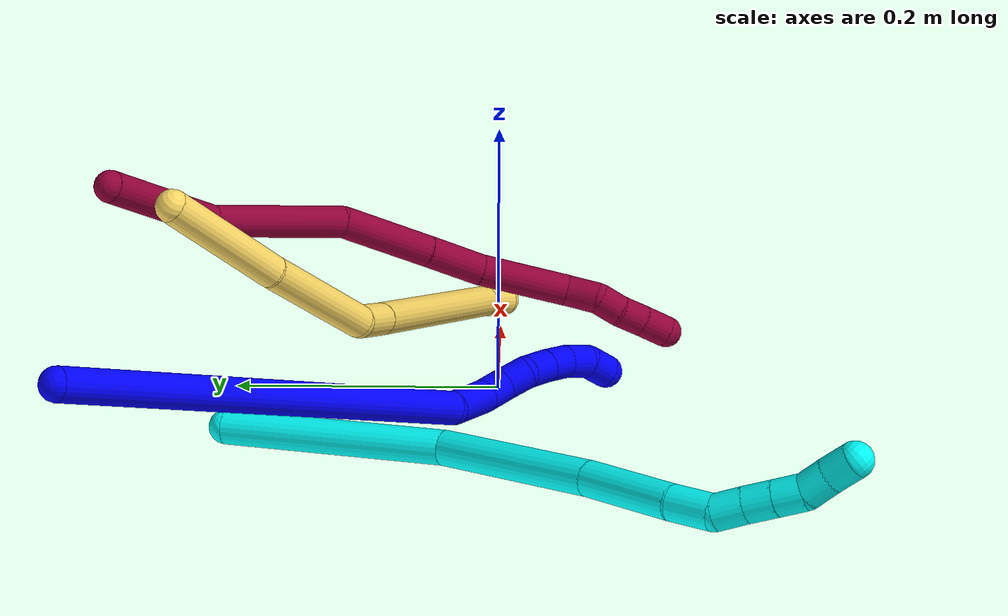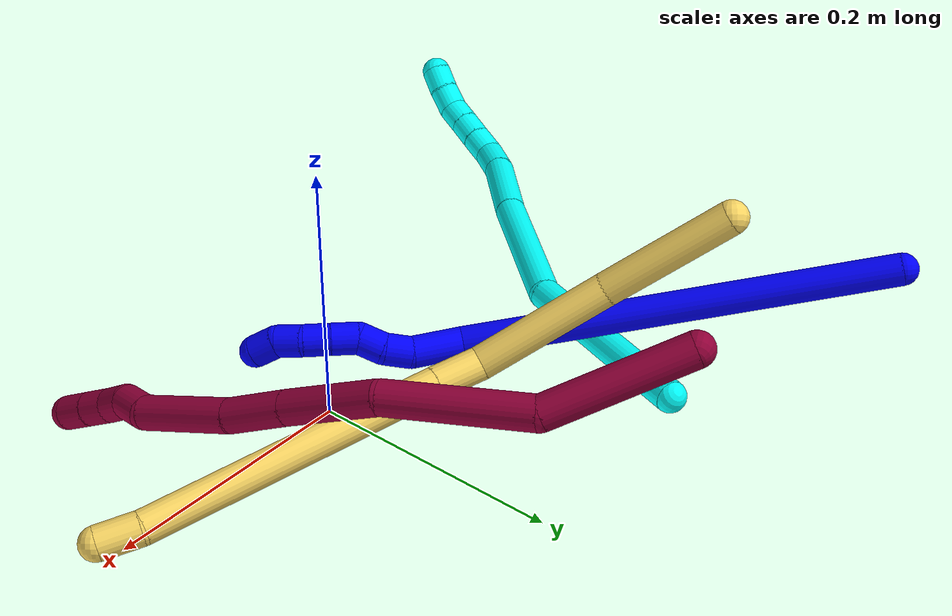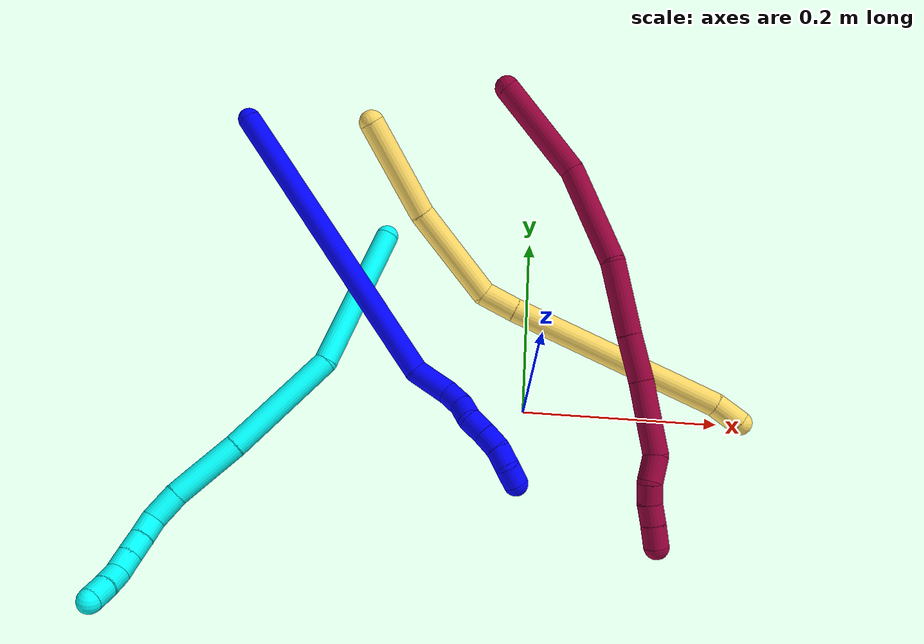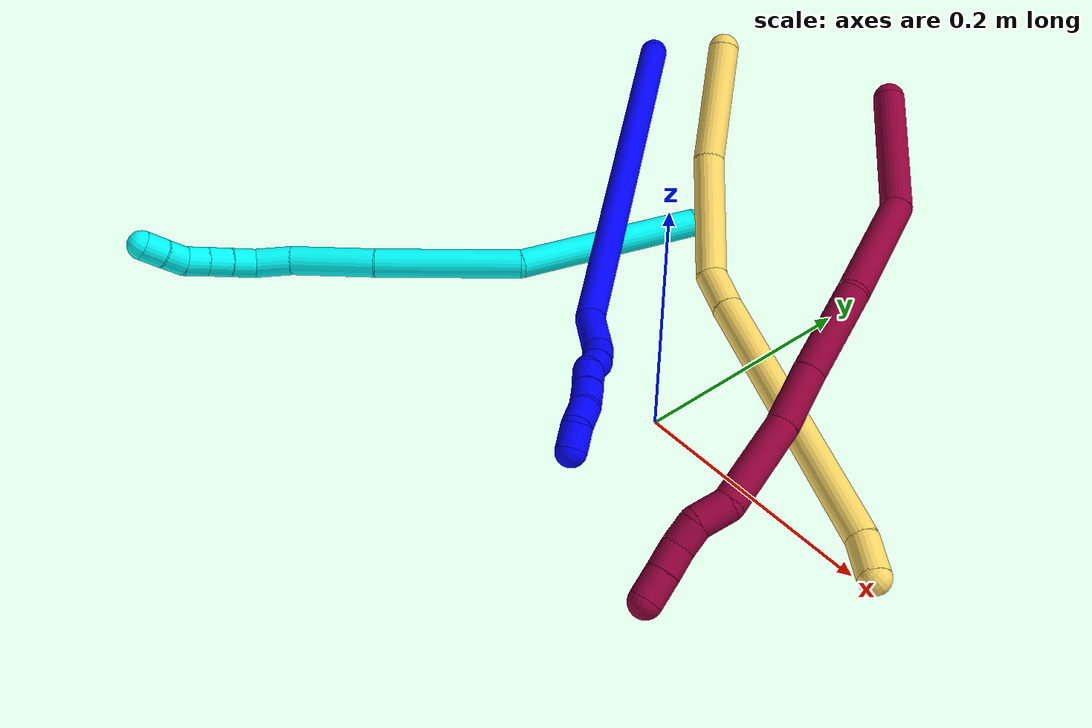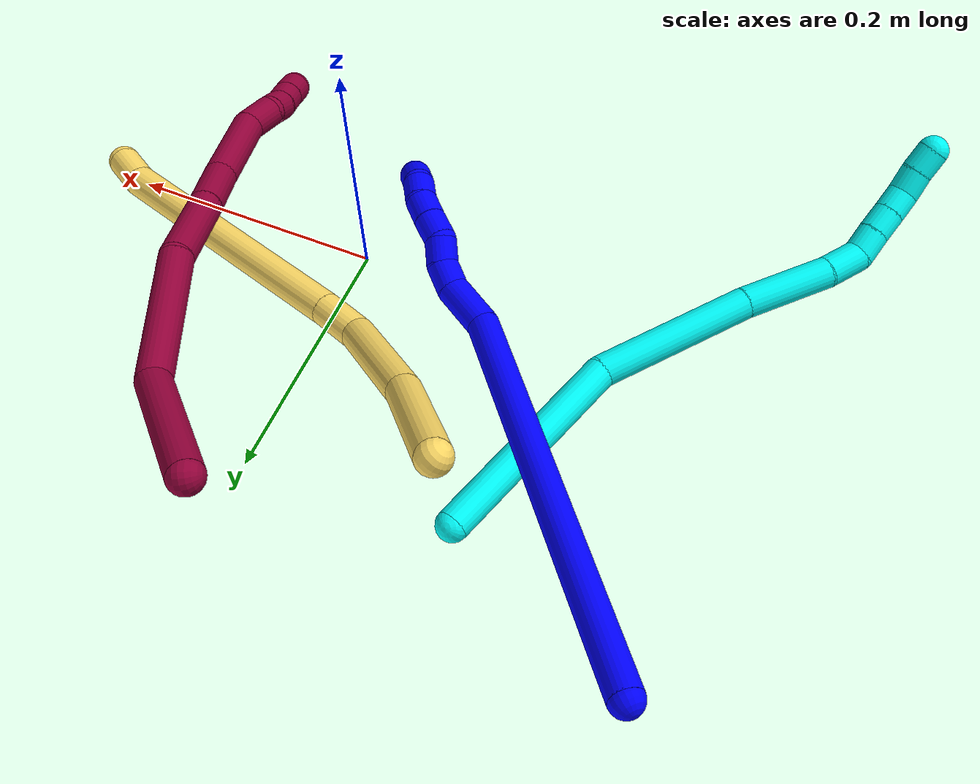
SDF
<sdf version="1.7">
 <world name="default">
  <model name="1">
   <static>0</static>
   <link name="1">
    <collision name="collision-cylinder-e_1_1_4">
     <pose>0.029832 -0.030413 -0.162078 2.9561 0.178968 1.53481</pose>
     <geometry><cylinder><radius>0.0125</radius><length>0.335167</length></cylinder></geometry>
     <surface>
      <friction><ode><mu>1.16</mu><mu2>1.16</mu2><slip1>0</slip1><slip2>0</slip2></ode></friction>
      <contact><ode><kp>1e+06</kp><kd>1</kd><max_vel>0</max_vel><min_depth>0.001</min_depth></ode></contact>
     </surface>
    </collision>
    <visual name="visual-cylinder-e_1_1_4">
     <pose>0.029832 -0.030413 -0.162078 2.9561 0.178968 1.53481</pose>
     <geometry><cylinder><radius>0.0125</radius><length>0.335167</length></cylinder></geometry>
     <material><ambient>0 0 1 1</ambient></material>
    </visual>
    <collision name="collision-cylinder-e_2_4_5">
     <pose>0.055717 -0.061799 -0.344134 3.09296 -0.194852 -2.6538</pose>
     <geometry><cylinder><radius>0.0125</radius><length>0.040775</length></cylinder></geometry>
     <surface>
      <friction><ode><mu>1.16</mu><mu2>1.16</mu2><slip1>0</slip1><slip2>0</slip2></ode></friction>
      <contact><ode><kp>1e+06</kp><kd>1</kd><max_vel>0</max_vel><min_depth>0.001</min_depth></ode></contact>
     </surface>
    </collision>
    <visual name="visual-cylinder-e_2_4_5">
     <pose>0.055717 -0.061799 -0.344134 3.09296 -0.194852 -2.6538</pose>
     <geometry><cylinder><radius>0.0125</radius><length>0.040775</length></cylinder></geometry>
     <material><ambient>0 0 1 1</ambient></material>
    </visual>
    <collision name="collision-cylinder-e_3_5_6">
     <pose>0.051412 -0.060309 -0.374522 -2.90933 -0.033408 0.284474</pose>
     <geometry><cylinder><radius>0.0125</radius><length>0.021406</length></cylinder></geometry>
     <surface>
      <friction><ode><mu>1.16</mu><mu2>1.16</mu2><slip1>0</slip1><slip2>0</slip2></ode></friction>
      <contact><ode><kp>1e+06</kp><kd>1</kd><max_vel>0</max_vel><min_depth>0.001</min_depth></ode></contact>
     </surface>
    </collision>
    <visual name="visual-cylinder-e_3_5_6">
     <pose>0.051412 -0.060309 -0.374522 -2.90933 -0.033408 0.284474</pose>
     <geometry><cylinder><radius>0.0125</radius><length>0.021406</length></cylinder></geometry>
     <material><ambient>0 0 1 1</ambient></material>
    </visual>
    <collision name="collision-cylinder-e_4_6_7">
     <pose>0.053349 -0.05372 -0.394014 -2.71507 0.226036 -0.965518</pose>
     <geometry><cylinder><radius>0.0125</radius><length>0.020472</length></cylinder></geometry>
     <surface>
      <friction><ode><mu>1.16</mu><mu2>1.16</mu2><slip1>0</slip1><slip2>0</slip2></ode></friction>
      <contact><ode><kp>1e+06</kp><kd>1</kd><max_vel>0</max_vel><min_depth>0.001</min_depth></ode></contact>
     </surface>
    </collision>
    <visual name="visual-cylinder-e_4_6_7">
     <pose>0.053349 -0.05372 -0.394014 -2.71507 0.226036 -0.965518</pose>
     <geometry><cylinder><radius>0.0125</radius><length>0.020472</length></cylinder></geometry>
     <material><ambient>0 0 1 1</ambient></material>
    </visual>
    <collision name="collision-cylinder-e_5_7_8">
     <pose>0.055448 -0.049232 -0.413849 -3.10802 -0.018126 0.990129</pose>
     <geometry><cylinder><radius>0.0125</radius><length>0.021522</length></cylinder></geometry>
     <surface>
      <friction><ode><mu>1.16</mu><mu2>1.16</mu2><slip1>0</slip1><slip2>0</slip2></ode></friction>
      <contact><ode><kp>1e+06</kp><kd>1</kd><max_vel>0</max_vel><min_depth>0.001</min_depth></ode></contact>
     </surface>
    </collision>
    <visual name="visual-cylinder-e_5_7_8">
     <pose>0.055448 -0.049232 -0.413849 -3.10802 -0.018126 0.990129</pose>
     <geometry><cylinder><radius>0.0125</radius><length>0.021522</length></cylinder></geometry>
     <material><ambient>0 0 1 1</ambient></material>
    </visual>
    <collision name="collision-cylinder-e_6_8_9">
     <pose>0.055749 -0.048898 -0.434904 3.13895 0.048167 3.03186</pose>
     <geometry><cylinder><radius>0.0125</radius><length>0.020628</length></cylinder></geometry>
     <surface>
      <friction><ode><mu>1.16</mu><mu2>1.16</mu2><slip1>0</slip1><slip2>0</slip2></ode></friction>
      <contact><ode><kp>1e+06</kp><kd>1</kd><max_vel>0</max_vel><min_depth>0.001</min_depth></ode></contact>
     </surface>
    </collision>
    <visual name="visual-cylinder-e_6_8_9">
     <pose>0.055749 -0.048898 -0.434904 3.13895 0.048167 3.03186</pose>
     <geometry><cylinder><radius>0.0125</radius><length>0.020628</length></cylinder></geometry>
     <material><ambient>0 0 1 1</ambient></material>
    </visual>
    <collision name="collision-cylinder-e_7_9_10">
     <pose>0.059128 -0.049632 -0.454768 3.0678 0.292002 2.64972</pose>
     <geometry><cylinder><radius>0.0125</radius><length>0.020025</length></cylinder></geometry>
     <surface>
      <friction><ode><mu>1.16</mu><mu2>1.16</mu2><slip1>0</slip1><slip2>0</slip2></ode></friction>
      <contact><ode><kp>1e+06</kp><kd>1</kd><max_vel>0</max_vel><min_depth>0.001</min_depth></ode></contact>
     </surface>
    </collision>
    <visual name="visual-cylinder-e_7_9_10">
     <pose>0.059128 -0.049632 -0.454768 3.0678 0.292002 2.64972</pose>
     <geometry><cylinder><radius>0.0125</radius><length>0.020025</length></cylinder></geometry>
     <material><ambient>0 0 1 1</ambient></material>
    </visual>
    <collision name="collision-cylinder-e_8_10_2">
     <pose>0.064704 -0.055042 -0.472738 2.63161 0.272629 0.968792</pose>
     <geometry><cylinder><radius>0.0125</radius><length>0.020006</length></cylinder></geometry>
     <surface>
      <friction><ode><mu>1.16</mu><mu2>1.16</mu2><slip1>0</slip1><slip2>0</slip2></ode></friction>
      <contact><ode><kp>1e+06</kp><kd>1</kd><max_vel>0</max_vel><min_depth>0.001</min_depth></ode></contact>
     </surface>
    </collision>
    <visual name="visual-cylinder-e_8_10_2">
     <pose>0.064704 -0.055042 -0.472738 2.63161 0.272629 0.968792</pose>
     <geometry><cylinder><radius>0.0125</radius><length>0.020006</length></cylinder></geometry>
     <material><ambient>0 0 1 1</ambient></material>
    </visual>
    <collision name="collision-sphere-2">
     <pose>0.067397 -0.059745 -0.481146 0 -0 0</pose>
     <geometry><sphere><radius>0.0125</radius></sphere></geometry>
     <surface>
      <friction><ode><mu>1.16</mu><mu2>1.16</mu2><slip1>0</slip1><slip2>0</slip2></ode></friction>
      <contact><ode><kp>1e+06</kp><kd>1</kd><max_vel>0</max_vel><min_depth>0.001</min_depth></ode></contact>
     </surface>
    </collision>
    <visual name="visual-sphere-2">
     <pose>0.067397 -0.059745 -0.481146 0 -0 0</pose>
     <geometry><sphere><radius>0.0125</radius></sphere></geometry>
     <material><ambient>0 0 1 1</ambient></material>
    </visual>
    <collision name="collision-sphere-10">
     <pose>0.06201 -0.050339 -0.46433 0 -0 0</pose>
     <geometry><sphere><radius>0.0125</radius></sphere></geometry>
     <surface>
      <friction><ode><mu>1.16</mu><mu2>1.16</mu2><slip1>0</slip1><slip2>0</slip2></ode></friction>
      <contact><ode><kp>1e+06</kp><kd>1</kd><max_vel>0</max_vel><min_depth>0.001</min_depth></ode></contact>
     </surface>
    </collision>
    <visual name="visual-sphere-10">
     <pose>0.06201 -0.050339 -0.46433 0 -0 0</pose>
     <geometry><sphere><radius>0.0125</radius></sphere></geometry>
     <material><ambient>0 0 1 1</ambient></material>
    </visual>
    <collision name="collision-sphere-9">
     <pose>0.056246 -0.048926 -0.445206 0 -0 0</pose>
     <geometry><sphere><radius>0.0125</radius></sphere></geometry>
     <surface>
      <friction><ode><mu>1.16</mu><mu2>1.16</mu2><slip1>0</slip1><slip2>0</slip2></ode></friction>
      <contact><ode><kp>1e+06</kp><kd>1</kd><max_vel>0</max_vel><min_depth>0.001</min_depth></ode></contact>
     </surface>
    </collision>
    <visual name="visual-sphere-9">
     <pose>0.056246 -0.048926 -0.445206 0 -0 0</pose>
     <geometry><sphere><radius>0.0125</radius></sphere></geometry>
     <material><ambient>0 0 1 1</ambient></material>
    </visual>
    <collision name="collision-sphere-4">
     <pose>0.059664 -0.060827 -0.324156 0 -0 0</pose>
     <geometry><sphere><radius>0.0125</radius></sphere></geometry>
     <surface>
      <friction><ode><mu>1.16</mu><mu2>1.16</mu2><slip1>0</slip1><slip2>0</slip2></ode></friction>
      <contact><ode><kp>1e+06</kp><kd>1</kd><max_vel>0</max_vel><min_depth>0.001</min_depth></ode></contact>
     </surface>
    </collision>
    <visual name="visual-sphere-4">
     <pose>0.059664 -0.060827 -0.324156 0 -0 0</pose>
     <geometry><sphere><radius>0.0125</radius></sphere></geometry>
     <material><ambient>0 0 1 1</ambient></material>
    </visual>
    <collision name="collision-sphere-1">
     <geometry><sphere><radius>0.0125</radius></sphere></geometry>
     <surface>
      <friction><ode><mu>1.16</mu><mu2>1.16</mu2><slip1>0</slip1><slip2>0</slip2></ode></friction>
      <contact><ode><kp>1e+06</kp><kd>1</kd><max_vel>0</max_vel><min_depth>0.001</min_depth></ode></contact>
     </surface>
    </collision>
    <visual name="visual-sphere-1">
     <geometry><sphere><radius>0.0125</radius></sphere></geometry>
     <material><ambient>0 0 1 1</ambient></material>
    </visual>
    <collision name="collision-sphere-8">
     <pose>0.055253 -0.048871 -0.424602 0 -0 0</pose>
     <geometry><sphere><radius>0.0125</radius></sphere></geometry>
     <surface>
      <friction><ode><mu>1.16</mu><mu2>1.16</mu2><slip1>0</slip1><slip2>0</slip2></ode></friction>
      <contact><ode><kp>1e+06</kp><kd>1</kd><max_vel>0</max_vel><min_depth>0.001</min_depth></ode></contact>
     </surface>
    </collision>
    <visual name="visual-sphere-8">
     <pose>0.055253 -0.048871 -0.424602 0 -0 0</pose>
     <geometry><sphere><radius>0.0125</radius></sphere></geometry>
     <material><ambient>0 0 1 1</ambient></material>
    </visual>
    <collision name="collision-sphere-5">
     <pose>0.05177 -0.062772 -0.364112 0 -0 0</pose>
     <geometry><sphere><radius>0.0125</radius></sphere></geometry>
     <surface>
      <friction><ode><mu>1.16</mu><mu2>1.16</mu2><slip1>0</slip1><slip2>0</slip2></ode></friction>
      <contact><ode><kp>1e+06</kp><kd>1</kd><max_vel>0</max_vel><min_depth>0.001</min_depth></ode></contact>
     </surface>
    </collision>
    <visual name="visual-sphere-5">
     <pose>0.05177 -0.062772 -0.364112 0 -0 0</pose>
     <geometry><sphere><radius>0.0125</radius></sphere></geometry>
     <material><ambient>0 0 1 1</ambient></material>
    </visual>
    <collision name="collision-sphere-6">
     <pose>0.051055 -0.057847 -0.384932 0 -0 0</pose>
     <geometry><sphere><radius>0.0125</radius></sphere></geometry>
     <surface>
      <friction><ode><mu>1.16</mu><mu2>1.16</mu2><slip1>0</slip1><slip2>0</slip2></ode></friction>
      <contact><ode><kp>1e+06</kp><kd>1</kd><max_vel>0</max_vel><min_depth>0.001</min_depth></ode></contact>
     </surface>
    </collision>
    <visual name="visual-sphere-6">
     <pose>0.051055 -0.057847 -0.384932 0 -0 0</pose>
     <geometry><sphere><radius>0.0125</radius></sphere></geometry>
     <material><ambient>0 0 1 1</ambient></material>
    </visual>
    <collision name="collision-sphere-7">
     <pose>0.055643 -0.049593 -0.403096 0 -0 0</pose>
     <geometry><sphere><radius>0.0125</radius></sphere></geometry>
     <surface>
      <friction><ode><mu>1.16</mu><mu2>1.16</mu2><slip1>0</slip1><slip2>0</slip2></ode></friction>
      <contact><ode><kp>1e+06</kp><kd>1</kd><max_vel>0</max_vel><min_depth>0.001</min_depth></ode></contact>
     </surface>
    </collision>
    <visual name="visual-sphere-7">
     <pose>0.055643 -0.049593 -0.403096 0 -0 0</pose>
     <geometry><sphere><radius>0.0125</radius></sphere></geometry>
     <material><ambient>0 0 1 1</ambient></material>
    </visual>
    <inertial>
     <pose>0.03857 -0.038535 -0.241761 0 -0 0</pose>
     <mass>0.5</mass>
     <inertia>
      <ixx>0.00321</ixx>
      <ixy>0</ixy>
      <ixz>0</ixz>
      <iyy>0.003091</iyy>
      <iyz>0</iyz>
      <izz>-2.6e-05</izz>
     </inertia>
    </inertial>
   </link>
   <pose>-0.318637 0.288308 0.084571 1.57556 0.198561 -2.32644</pose>
  </model>
  <model name="3">
   <static>0</static>
   <link name="3">
    <collision name="collision-cylinder-e_1_1_4">
     <pose>-0.011115 -0.061746 0.05356 0.856269 -0.135151 -0.061753</pose>
     <geometry><cylinder><radius>0.0125</radius><length>0.164983</length></cylinder></geometry>
     <surface>
      <friction><ode><mu>1.16</mu><mu2>1.16</mu2><slip1>0</slip1><slip2>0</slip2></ode></friction>
      <contact><ode><kp>1e+06</kp><kd>1</kd><max_vel>0</max_vel><min_depth>0.001</min_depth></ode></contact>
     </surface>
    </collision>
    <visual name="visual-cylinder-e_1_1_4">
     <pose>-0.011115 -0.061746 0.05356 0.856269 -0.135151 -0.061753</pose>
     <geometry><cylinder><radius>0.0125</radius><length>0.164983</length></cylinder></geometry>
     <material><ambient>0.003922 1 0.996078 1</ambient></material>
    </visual>
    <collision name="collision-cylinder-e_2_4_5">
     <pose>-0.008522 -0.174282 0.142656 0.960313 0.217631 0.113671</pose>
     <geometry><cylinder><radius>0.0125</radius><length>0.126969</length></cylinder></geometry>
     <surface>
      <friction><ode><mu>1.16</mu><mu2>1.16</mu2><slip1>0</slip1><slip2>0</slip2></ode></friction>
      <contact><ode><kp>1e+06</kp><kd>1</kd><max_vel>0</max_vel><min_depth>0.001</min_depth></ode></contact>
     </surface>
    </collision>
    <visual name="visual-cylinder-e_2_4_5">
     <pose>-0.008522 -0.174282 0.142656 0.960313 0.217631 0.113671</pose>
     <geometry><cylinder><radius>0.0125</radius><length>0.126969</length></cylinder></geometry>
     <material><ambient>0.003922 1 0.996078 1</ambient></material>
    </visual>
    <collision name="collision-cylinder-e_3_5_6">
     <pose>0.015998 -0.253556 0.198628 0.948416 0.299187 0.154412</pose>
     <geometry><cylinder><radius>0.0125</radius><length>0.073374</length></cylinder></geometry>
     <surface>
      <friction><ode><mu>1.16</mu><mu2>1.16</mu2><slip1>0</slip1><slip2>0</slip2></ode></friction>
      <contact><ode><kp>1e+06</kp><kd>1</kd><max_vel>0</max_vel><min_depth>0.001</min_depth></ode></contact>
     </surface>
    </collision>
    <visual name="visual-cylinder-e_3_5_6">
     <pose>0.015998 -0.253556 0.198628 0.948416 0.299187 0.154412</pose>
     <geometry><cylinder><radius>0.0125</radius><length>0.073374</length></cylinder></geometry>
     <material><ambient>0.003922 1 0.996078 1</ambient></material>
    </visual>
    <collision name="collision-cylinder-e_4_6_7">
     <pose>0.0294 -0.294335 0.228983 0.892002 0.162393 0.077777</pose>
     <geometry><cylinder><radius>0.0125</radius><length>0.032015</length></cylinder></geometry>
     <surface>
      <friction><ode><mu>1.16</mu><mu2>1.16</mu2><slip1>0</slip1><slip2>0</slip2></ode></friction>
      <contact><ode><kp>1e+06</kp><kd>1</kd><max_vel>0</max_vel><min_depth>0.001</min_depth></ode></contact>
     </surface>
    </collision>
    <visual name="visual-cylinder-e_4_6_7">
     <pose>0.0294 -0.294335 0.228983 0.892002 0.162393 0.077777</pose>
     <geometry><cylinder><radius>0.0125</radius><length>0.032015</length></cylinder></geometry>
     <material><ambient>0.003922 1 0.996078 1</ambient></material>
    </visual>
    <collision name="collision-cylinder-e_5_7_8">
     <pose>0.029381 -0.316552 0.242914 1.18649 -0.238963 -0.161543</pose>
     <geometry><cylinder><radius>0.0125</radius><length>0.02203</length></cylinder></geometry>
     <surface>
      <friction><ode><mu>1.16</mu><mu2>1.16</mu2><slip1>0</slip1><slip2>0</slip2></ode></friction>
      <contact><ode><kp>1e+06</kp><kd>1</kd><max_vel>0</max_vel><min_depth>0.001</min_depth></ode></contact>
     </surface>
    </collision>
    <visual name="visual-cylinder-e_5_7_8">
     <pose>0.029381 -0.316552 0.242914 1.18649 -0.238963 -0.161543</pose>
     <geometry><cylinder><radius>0.0125</radius><length>0.02203</length></cylinder></geometry>
     <material><ambient>0.003922 1 0.996078 1</ambient></material>
    </visual>
    <collision name="collision-cylinder-e_6_8_9">
     <pose>0.02472 -0.33573 0.250851 1.16976 -0.20149 -0.133674</pose>
     <geometry><cylinder><radius>0.0125</radius><length>0.020524</length></cylinder></geometry>
     <surface>
      <friction><ode><mu>1.16</mu><mu2>1.16</mu2><slip1>0</slip1><slip2>0</slip2></ode></friction>
      <contact><ode><kp>1e+06</kp><kd>1</kd><max_vel>0</max_vel><min_depth>0.001</min_depth></ode></contact>
     </surface>
    </collision>
    <visual name="visual-cylinder-e_6_8_9">
     <pose>0.02472 -0.33573 0.250851 1.16976 -0.20149 -0.133674</pose>
     <geometry><cylinder><radius>0.0125</radius><length>0.020524</length></cylinder></geometry>
     <material><ambient>0.003922 1 0.996078 1</ambient></material>
    </visual>
    <collision name="collision-cylinder-e_7_9_10">
     <pose>0.02049 -0.35399 0.258667 1.1629 -0.218314 -0.143809</pose>
     <geometry><cylinder><radius>0.0125</radius><length>0.020092</length></cylinder></geometry>
     <surface>
      <friction><ode><mu>1.16</mu><mu2>1.16</mu2><slip1>0</slip1><slip2>0</slip2></ode></friction>
      <contact><ode><kp>1e+06</kp><kd>1</kd><max_vel>0</max_vel><min_depth>0.001</min_depth></ode></contact>
     </surface>
    </collision>
    <visual name="visual-cylinder-e_7_9_10">
     <pose>0.02049 -0.35399 0.258667 1.1629 -0.218314 -0.143809</pose>
     <geometry><cylinder><radius>0.0125</radius><length>0.020092</length></cylinder></geometry>
     <material><ambient>0.003922 1 0.996078 1</ambient></material>
    </visual>
    <collision name="collision-cylinder-e_8_10_11">
     <pose>0.015693 -0.372638 0.26289 1.53628 -0.265244 -0.256342</pose>
     <geometry><cylinder><radius>0.0125</radius><length>0.020002</length></cylinder></geometry>
     <surface>
      <friction><ode><mu>1.16</mu><mu2>1.16</mu2><slip1>0</slip1><slip2>0</slip2></ode></friction>
      <contact><ode><kp>1e+06</kp><kd>1</kd><max_vel>0</max_vel><min_depth>0.001</min_depth></ode></contact>
     </surface>
    </collision>
    <visual name="visual-cylinder-e_8_10_11">
     <pose>0.015693 -0.372638 0.26289 1.53628 -0.265244 -0.256342</pose>
     <geometry><cylinder><radius>0.0125</radius><length>0.020002</length></cylinder></geometry>
     <material><ambient>0.003922 1 0.996078 1</ambient></material>
    </visual>
    <collision name="collision-cylinder-e_9_11_2">
     <pose>0.011426 -0.392137 0.263778 1.51458 -0.165179 -0.156183</pose>
     <geometry><cylinder><radius>0.0125</radius><length>0.020012</length></cylinder></geometry>
     <surface>
      <friction><ode><mu>1.16</mu><mu2>1.16</mu2><slip1>0</slip1><slip2>0</slip2></ode></friction>
      <contact><ode><kp>1e+06</kp><kd>1</kd><max_vel>0</max_vel><min_depth>0.001</min_depth></ode></contact>
     </surface>
    </collision>
    <visual name="visual-cylinder-e_9_11_2">
     <pose>0.011426 -0.392137 0.263778 1.51458 -0.165179 -0.156183</pose>
     <geometry><cylinder><radius>0.0125</radius><length>0.020012</length></cylinder></geometry>
     <material><ambient>0.003922 1 0.996078 1</ambient></material>
    </visual>
    <collision name="collision-sphere-2">
     <pose>0.00978 -0.401991 0.264333 0 -0 0</pose>
     <geometry><sphere><radius>0.0125</radius></sphere></geometry>
     <surface>
      <friction><ode><mu>1.16</mu><mu2>1.16</mu2><slip1>0</slip1><slip2>0</slip2></ode></friction>
      <contact><ode><kp>1e+06</kp><kd>1</kd><max_vel>0</max_vel><min_depth>0.001</min_depth></ode></contact>
     </surface>
    </collision>
    <visual name="visual-sphere-2">
     <pose>0.00978 -0.401991 0.264333 0 -0 0</pose>
     <geometry><sphere><radius>0.0125</radius></sphere></geometry>
     <material><ambient>0.003922 1 0.996078 1</ambient></material>
    </visual>
    <collision name="collision-sphere-11">
     <pose>0.013071 -0.382283 0.263224 0 -0 0</pose>
     <geometry><sphere><radius>0.0125</radius></sphere></geometry>
     <surface>
      <friction><ode><mu>1.16</mu><mu2>1.16</mu2><slip1>0</slip1><slip2>0</slip2></ode></friction>
      <contact><ode><kp>1e+06</kp><kd>1</kd><max_vel>0</max_vel><min_depth>0.001</min_depth></ode></contact>
     </surface>
    </collision>
    <visual name="visual-sphere-11">
     <pose>0.013071 -0.382283 0.263224 0 -0 0</pose>
     <geometry><sphere><radius>0.0125</radius></sphere></geometry>
     <material><ambient>0.003922 1 0.996078 1</ambient></material>
    </visual>
    <collision name="collision-sphere-10">
     <pose>0.018314 -0.362992 0.262557 0 -0 0</pose>
     <geometry><sphere><radius>0.0125</radius></sphere></geometry>
     <surface>
      <friction><ode><mu>1.16</mu><mu2>1.16</mu2><slip1>0</slip1><slip2>0</slip2></ode></friction>
      <contact><ode><kp>1e+06</kp><kd>1</kd><max_vel>0</max_vel><min_depth>0.001</min_depth></ode></contact>
     </surface>
    </collision>
    <visual name="visual-sphere-10">
     <pose>0.018314 -0.362992 0.262557 0 -0 0</pose>
     <geometry><sphere><radius>0.0125</radius></sphere></geometry>
     <material><ambient>0.003922 1 0.996078 1</ambient></material>
    </visual>
    <collision name="collision-sphere-9">
     <pose>0.022666 -0.344987 0.254776 0 -0 0</pose>
     <geometry><sphere><radius>0.0125</radius></sphere></geometry>
     <surface>
      <friction><ode><mu>1.16</mu><mu2>1.16</mu2><slip1>0</slip1><slip2>0</slip2></ode></friction>
      <contact><ode><kp>1e+06</kp><kd>1</kd><max_vel>0</max_vel><min_depth>0.001</min_depth></ode></contact>
     </surface>
    </collision>
    <visual name="visual-sphere-9">
     <pose>0.022666 -0.344987 0.254776 0 -0 0</pose>
     <geometry><sphere><radius>0.0125</radius></sphere></geometry>
     <material><ambient>0.003922 1 0.996078 1</ambient></material>
    </visual>
    <collision name="collision-sphere-4">
     <pose>-0.02223 -0.123492 0.107121 0 -0 0</pose>
     <geometry><sphere><radius>0.0125</radius></sphere></geometry>
     <surface>
      <friction><ode><mu>1.16</mu><mu2>1.16</mu2><slip1>0</slip1><slip2>0</slip2></ode></friction>
      <contact><ode><kp>1e+06</kp><kd>1</kd><max_vel>0</max_vel><min_depth>0.001</min_depth></ode></contact>
     </surface>
    </collision>
    <visual name="visual-sphere-4">
     <pose>-0.02223 -0.123492 0.107121 0 -0 0</pose>
     <geometry><sphere><radius>0.0125</radius></sphere></geometry>
     <material><ambient>0.003922 1 0.996078 1</ambient></material>
    </visual>
    <collision name="collision-sphere-1">
     <geometry><sphere><radius>0.0125</radius></sphere></geometry>
     <surface>
      <friction><ode><mu>1.16</mu><mu2>1.16</mu2><slip1>0</slip1><slip2>0</slip2></ode></friction>
      <contact><ode><kp>1e+06</kp><kd>1</kd><max_vel>0</max_vel><min_depth>0.001</min_depth></ode></contact>
     </surface>
    </collision>
    <visual name="visual-sphere-1">
     <geometry><sphere><radius>0.0125</radius></sphere></geometry>
     <material><ambient>0.003922 1 0.996078 1</ambient></material>
    </visual>
    <collision name="collision-sphere-8">
     <pose>0.026773 -0.326473 0.246926 0 -0 0</pose>
     <geometry><sphere><radius>0.0125</radius></sphere></geometry>
     <surface>
      <friction><ode><mu>1.16</mu><mu2>1.16</mu2><slip1>0</slip1><slip2>0</slip2></ode></friction>
      <contact><ode><kp>1e+06</kp><kd>1</kd><max_vel>0</max_vel><min_depth>0.001</min_depth></ode></contact>
     </surface>
    </collision>
    <visual name="visual-sphere-8">
     <pose>0.026773 -0.326473 0.246926 0 -0 0</pose>
     <geometry><sphere><radius>0.0125</radius></sphere></geometry>
     <material><ambient>0.003922 1 0.996078 1</ambient></material>
    </visual>
    <collision name="collision-sphere-5">
     <pose>0.005185 -0.225073 0.178191 0 -0 0</pose>
     <geometry><sphere><radius>0.0125</radius></sphere></geometry>
     <surface>
      <friction><ode><mu>1.16</mu><mu2>1.16</mu2><slip1>0</slip1><slip2>0</slip2></ode></friction>
      <contact><ode><kp>1e+06</kp><kd>1</kd><max_vel>0</max_vel><min_depth>0.001</min_depth></ode></contact>
     </surface>
    </collision>
    <visual name="visual-sphere-5">
     <pose>0.005185 -0.225073 0.178191 0 -0 0</pose>
     <geometry><sphere><radius>0.0125</radius></sphere></geometry>
     <material><ambient>0.003922 1 0.996078 1</ambient></material>
    </visual>
    <collision name="collision-sphere-6">
     <pose>0.026812 -0.28204 0.219065 0 -0 0</pose>
     <geometry><sphere><radius>0.0125</radius></sphere></geometry>
     <surface>
      <friction><ode><mu>1.16</mu><mu2>1.16</mu2><slip1>0</slip1><slip2>0</slip2></ode></friction>
      <contact><ode><kp>1e+06</kp><kd>1</kd><max_vel>0</max_vel><min_depth>0.001</min_depth></ode></contact>
     </surface>
    </collision>
    <visual name="visual-sphere-6">
     <pose>0.026812 -0.28204 0.219065 0 -0 0</pose>
     <geometry><sphere><radius>0.0125</radius></sphere></geometry>
     <material><ambient>0.003922 1 0.996078 1</ambient></material>
    </visual>
    <collision name="collision-sphere-7">
     <pose>0.031988 -0.306631 0.238902 0 -0 0</pose>
     <geometry><sphere><radius>0.0125</radius></sphere></geometry>
     <surface>
      <friction><ode><mu>1.16</mu><mu2>1.16</mu2><slip1>0</slip1><slip2>0</slip2></ode></friction>
      <contact><ode><kp>1e+06</kp><kd>1</kd><max_vel>0</max_vel><min_depth>0.001</min_depth></ode></contact>
     </surface>
    </collision>
    <visual name="visual-sphere-7">
     <pose>0.031988 -0.306631 0.238902 0 -0 0</pose>
     <geometry><sphere><radius>0.0125</radius></sphere></geometry>
     <material><ambient>0.003922 1 0.996078 1</ambient></material>
    </visual>
    <inertial>
     <pose>0.002616 -0.193241 0.150177 0 -0 0</pose>
     <mass>0.5</mass>
     <inertia>
      <ixx>0.000593</ixx>
      <ixy>0</ixy>
      <ixz>0</ixz>
      <iyy>0.000351</iyy>
      <iyz>0</iyz>
      <izz>0.000488</izz>
     </inertia>
    </inertial>
   </link>
   <pose>-0.161001 0.192986 0.012531 -2.46075 0.237553 2.69179</pose>
  </model>
  <model name="5">
   <static>0</static>
   <link name="5">
    <collision name="collision-cylinder-e_1_1_4">
     <pose>0.044104 0.014082 0.021804 -0.573454 1.03886 -0.334055</pose>
     <geometry><cylinder><radius>0.0125</radius><length>0.102351</length></cylinder></geometry>
     <surface>
      <friction><ode><mu>1.16</mu><mu2>1.16</mu2><slip1>0</slip1><slip2>0</slip2></ode></friction>
      <contact><ode><kp>1e+06</kp><kd>1</kd><max_vel>0</max_vel><min_depth>0.001</min_depth></ode></contact>
     </surface>
    </collision>
    <visual name="visual-cylinder-e_1_1_4">
     <pose>0.044104 0.014082 0.021804 -0.573454 1.03886 -0.334055</pose>
     <geometry><cylinder><radius>0.0125</radius><length>0.102351</length></cylinder></geometry>
     <material><ambient>1 0.858824 0.4 1</ambient></material>
    </visual>
    <collision name="collision-cylinder-e_2_4_5">
     <pose>0.133744 0.034695 0.068111 -0.260465 1.06267 -0.153646</pose>
     <geometry><cylinder><radius>0.0125</radius><length>0.104239</length></cylinder></geometry>
     <surface>
      <friction><ode><mu>1.16</mu><mu2>1.16</mu2><slip1>0</slip1><slip2>0</slip2></ode></friction>
      <contact><ode><kp>1e+06</kp><kd>1</kd><max_vel>0</max_vel><min_depth>0.001</min_depth></ode></contact>
     </surface>
    </collision>
    <visual name="visual-cylinder-e_2_4_5">
     <pose>0.133744 0.034695 0.068111 -0.260465 1.06267 -0.153646</pose>
     <geometry><cylinder><radius>0.0125</radius><length>0.104239</length></cylinder></geometry>
     <material><ambient>1 0.858824 0.4 1</ambient></material>
    </visual>
    <collision name="collision-cylinder-e_3_5_6">
     <pose>0.194751 0.035035 0.100108 0.690482 1.00987 0.392454</pose>
     <geometry><cylinder><radius>0.0125</radius><length>0.036545</length></cylinder></geometry>
     <surface>
      <friction><ode><mu>1.16</mu><mu2>1.16</mu2><slip1>0</slip1><slip2>0</slip2></ode></friction>
      <contact><ode><kp>1e+06</kp><kd>1</kd><max_vel>0</max_vel><min_depth>0.001</min_depth></ode></contact>
     </surface>
    </collision>
    <visual name="visual-cylinder-e_3_5_6">
     <pose>0.194751 0.035035 0.100108 0.690482 1.00987 0.392454</pose>
     <geometry><cylinder><radius>0.0125</radius><length>0.036545</length></cylinder></geometry>
     <material><ambient>1 0.858824 0.4 1</ambient></material>
    </visual>
    <collision name="collision-cylinder-e_4_6_7">
     <pose>0.302594 -0.013594 0.156869 0.711061 0.957424 0.380733</pose>
     <geometry><cylinder><radius>0.0125</radius><length>0.225925</length></cylinder></geometry>
     <surface>
      <friction><ode><mu>1.16</mu><mu2>1.16</mu2><slip1>0</slip1><slip2>0</slip2></ode></friction>
      <contact><ode><kp>1e+06</kp><kd>1</kd><max_vel>0</max_vel><min_depth>0.001</min_depth></ode></contact>
     </surface>
    </collision>
    <visual name="visual-cylinder-e_4_6_7">
     <pose>0.302594 -0.013594 0.156869 0.711061 0.957424 0.380733</pose>
     <geometry><cylinder><radius>0.0125</radius><length>0.225925</length></cylinder></geometry>
     <material><ambient>1 0.858824 0.4 1</ambient></material>
    </visual>
    <collision name="collision-cylinder-e_5_7_2">
     <pose>0.409201 -0.059584 0.211036 0.627419 1.16884 0.4228</pose>
     <geometry><cylinder><radius>0.0125</radius><length>0.03094</length></cylinder></geometry>
     <surface>
      <friction><ode><mu>1.16</mu><mu2>1.16</mu2><slip1>0</slip1><slip2>0</slip2></ode></friction>
      <contact><ode><kp>1e+06</kp><kd>1</kd><max_vel>0</max_vel><min_depth>0.001</min_depth></ode></contact>
     </surface>
    </collision>
    <visual name="visual-cylinder-e_5_7_2">
     <pose>0.409201 -0.059584 0.211036 0.627419 1.16884 0.4228</pose>
     <geometry><cylinder><radius>0.0125</radius><length>0.03094</length></cylinder></geometry>
     <material><ambient>1 0.858824 0.4 1</ambient></material>
    </visual>
    <collision name="collision-sphere-2">
     <pose>0.423438 -0.063137 0.215935 0 -0 0</pose>
     <geometry><sphere><radius>0.0125</radius></sphere></geometry>
     <surface>
      <friction><ode><mu>1.16</mu><mu2>1.16</mu2><slip1>0</slip1><slip2>0</slip2></ode></friction>
      <contact><ode><kp>1e+06</kp><kd>1</kd><max_vel>0</max_vel><min_depth>0.001</min_depth></ode></contact>
     </surface>
    </collision>
    <visual name="visual-sphere-2">
     <pose>0.423438 -0.063137 0.215935 0 -0 0</pose>
     <geometry><sphere><radius>0.0125</radius></sphere></geometry>
     <material><ambient>1 0.858824 0.4 1</ambient></material>
    </visual>
    <collision name="collision-sphere-7">
     <pose>0.394964 -0.056031 0.206136 0 -0 0</pose>
     <geometry><sphere><radius>0.0125</radius></sphere></geometry>
     <surface>
      <friction><ode><mu>1.16</mu><mu2>1.16</mu2><slip1>0</slip1><slip2>0</slip2></ode></friction>
      <contact><ode><kp>1e+06</kp><kd>1</kd><max_vel>0</max_vel><min_depth>0.001</min_depth></ode></contact>
     </surface>
    </collision>
    <visual name="visual-sphere-7">
     <pose>0.394964 -0.056031 0.206136 0 -0 0</pose>
     <geometry><sphere><radius>0.0125</radius></sphere></geometry>
     <material><ambient>1 0.858824 0.4 1</ambient></material>
    </visual>
    <collision name="collision-sphere-6">
     <pose>0.210223 0.028843 0.107602 0 -0 0</pose>
     <geometry><sphere><radius>0.0125</radius></sphere></geometry>
     <surface>
      <friction><ode><mu>1.16</mu><mu2>1.16</mu2><slip1>0</slip1><slip2>0</slip2></ode></friction>
      <contact><ode><kp>1e+06</kp><kd>1</kd><max_vel>0</max_vel><min_depth>0.001</min_depth></ode></contact>
     </surface>
    </collision>
    <visual name="visual-sphere-6">
     <pose>0.210223 0.028843 0.107602 0 -0 0</pose>
     <geometry><sphere><radius>0.0125</radius></sphere></geometry>
     <material><ambient>1 0.858824 0.4 1</ambient></material>
    </visual>
    <collision name="collision-sphere-5">
     <pose>0.179278 0.041226 0.092614 0 -0 0</pose>
     <geometry><sphere><radius>0.0125</radius></sphere></geometry>
     <surface>
      <friction><ode><mu>1.16</mu><mu2>1.16</mu2><slip1>0</slip1><slip2>0</slip2></ode></friction>
      <contact><ode><kp>1e+06</kp><kd>1</kd><max_vel>0</max_vel><min_depth>0.001</min_depth></ode></contact>
     </surface>
    </collision>
    <visual name="visual-sphere-5">
     <pose>0.179278 0.041226 0.092614 0 -0 0</pose>
     <geometry><sphere><radius>0.0125</radius></sphere></geometry>
     <material><ambient>1 0.858824 0.4 1</ambient></material>
    </visual>
    <collision name="collision-sphere-1">
     <geometry><sphere><radius>0.0125</radius></sphere></geometry>
     <surface>
      <friction><ode><mu>1.16</mu><mu2>1.16</mu2><slip1>0</slip1><slip2>0</slip2></ode></friction>
      <contact><ode><kp>1e+06</kp><kd>1</kd><max_vel>0</max_vel><min_depth>0.001</min_depth></ode></contact>
     </surface>
    </collision>
    <visual name="visual-sphere-1">
     <geometry><sphere><radius>0.0125</radius></sphere></geometry>
     <material><ambient>1 0.858824 0.4 1</ambient></material>
    </visual>
    <collision name="collision-sphere-4">
     <pose>0.088209 0.028164 0.043608 0 -0 0</pose>
     <geometry><sphere><radius>0.0125</radius></sphere></geometry>
     <surface>
      <friction><ode><mu>1.16</mu><mu2>1.16</mu2><slip1>0</slip1><slip2>0</slip2></ode></friction>
      <contact><ode><kp>1e+06</kp><kd>1</kd><max_vel>0</max_vel><min_depth>0.001</min_depth></ode></contact>
     </surface>
    </collision>
    <visual name="visual-sphere-4">
     <pose>0.088209 0.028164 0.043608 0 -0 0</pose>
     <geometry><sphere><radius>0.0125</radius></sphere></geometry>
     <material><ambient>1 0.858824 0.4 1</ambient></material>
    </visual>
    <inertial>
     <pose>0.213194 0.002847 0.10992 0 -0 0</pose>
     <mass>0.5</mass>
     <inertia>
      <ixx>0.000834</ixx>
      <ixy>0</ixy>
      <ixz>0</ixz>
      <iyy>0.00125</iyy>
      <iyz>0</iyz>
      <izz>-0.000622</izz>
     </inertia>
    </inertial>
   </link>
   <pose>-0.171322 0.226868 0.17454 -2.43655 0.079779 -0.958364</pose>
  </model>
  <model name="8">
   <static>0</static>
   <link name="8">
    <collision name="collision-cylinder-e_1_1_4">
     <pose>0.001438 -0.04886 0.02174 1.15216 0.026879 0.017461</pose>
     <geometry><cylinder><radius>0.0125</radius><length>0.106995</length></cylinder></geometry>
     <surface>
      <friction><ode><mu>1.16</mu><mu2>1.16</mu2><slip1>0</slip1><slip2>0</slip2></ode></friction>
      <contact><ode><kp>1e+06</kp><kd>1</kd><max_vel>0</max_vel><min_depth>0.001</min_depth></ode></contact>
     </surface>
    </collision>
    <visual name="visual-cylinder-e_1_1_4">
     <pose>0.001438 -0.04886 0.02174 1.15216 0.026879 0.017461</pose>
     <geometry><cylinder><radius>0.0125</radius><length>0.106995</length></cylinder></geometry>
     <material><ambient>0.584314 0 0.227451 1</ambient></material>
    </visual>
    <collision name="collision-cylinder-e_2_4_5">
     <pose>-0.009473 -0.150039 0.042914 1.58161 -0.231767 -0.234263</pose>
     <geometry><cylinder><radius>0.0125</radius><length>0.107519</length></cylinder></geometry>
     <surface>
      <friction><ode><mu>1.16</mu><mu2>1.16</mu2><slip1>0</slip1><slip2>0</slip2></ode></friction>
      <contact><ode><kp>1e+06</kp><kd>1</kd><max_vel>0</max_vel><min_depth>0.001</min_depth></ode></contact>
     </surface>
    </collision>
    <visual name="visual-cylinder-e_2_4_5">
     <pose>-0.009473 -0.150039 0.042914 1.58161 -0.231767 -0.234263</pose>
     <geometry><cylinder><radius>0.0125</radius><length>0.107519</length></cylinder></geometry>
     <material><ambient>0.584314 0 0.227451 1</ambient></material>
    </visual>
    <collision name="collision-cylinder-e_3_5_6">
     <pose>-0.018913 -0.239333 0.040297 1.62621 0.078376 0.08284</pose>
     <geometry><cylinder><radius>0.0125</radius><length>0.074292</length></cylinder></geometry>
     <surface>
      <friction><ode><mu>1.16</mu><mu2>1.16</mu2><slip1>0</slip1><slip2>0</slip2></ode></friction>
      <contact><ode><kp>1e+06</kp><kd>1</kd><max_vel>0</max_vel><min_depth>0.001</min_depth></ode></contact>
     </surface>
    </collision>
    <visual name="visual-cylinder-e_3_5_6">
     <pose>-0.018913 -0.239333 0.040297 1.62621 0.078376 0.08284</pose>
     <geometry><cylinder><radius>0.0125</radius><length>0.074292</length></cylinder></geometry>
     <material><ambient>0.584314 0 0.227451 1</ambient></material>
    </visual>
    <collision name="collision-cylinder-e_4_6_7">
     <pose>-0.01409 -0.299602 0.03777 1.59125 0.082004 0.083697</pose>
     <geometry><cylinder><radius>0.0125</radius><length>0.046753</length></cylinder></geometry>
     <surface>
      <friction><ode><mu>1.16</mu><mu2>1.16</mu2><slip1>0</slip1><slip2>0</slip2></ode></friction>
      <contact><ode><kp>1e+06</kp><kd>1</kd><max_vel>0</max_vel><min_depth>0.001</min_depth></ode></contact>
     </surface>
    </collision>
    <visual name="visual-cylinder-e_4_6_7">
     <pose>-0.01409 -0.299602 0.03777 1.59125 0.082004 0.083697</pose>
     <geometry><cylinder><radius>0.0125</radius><length>0.046753</length></cylinder></geometry>
     <material><ambient>0.584314 0 0.227451 1</ambient></material>
    </visual>
    <collision name="collision-cylinder-e_5_7_8">
     <pose>-0.012514 -0.359462 0.032343 1.70536 -0.009187 -0.010514</pose>
     <geometry><cylinder><radius>0.0125</radius><length>0.073804</length></cylinder></geometry>
     <surface>
      <friction><ode><mu>1.16</mu><mu2>1.16</mu2><slip1>0</slip1><slip2>0</slip2></ode></friction>
      <contact><ode><kp>1e+06</kp><kd>1</kd><max_vel>0</max_vel><min_depth>0.001</min_depth></ode></contact>
     </surface>
    </collision>
    <visual name="visual-cylinder-e_5_7_8">
     <pose>-0.012514 -0.359462 0.032343 1.70536 -0.009187 -0.010514</pose>
     <geometry><cylinder><radius>0.0125</radius><length>0.073804</length></cylinder></geometry>
     <material><ambient>0.584314 0 0.227451 1</ambient></material>
    </visual>
    <collision name="collision-cylinder-e_6_8_9">
     <pose>-0.012367 -0.407317 0.020192 2.13861 0.036285 0.066167</pose>
     <geometry><cylinder><radius>0.0125</radius><length>0.026796</length></cylinder></geometry>
     <surface>
      <friction><ode><mu>1.16</mu><mu2>1.16</mu2><slip1>0</slip1><slip2>0</slip2></ode></friction>
      <contact><ode><kp>1e+06</kp><kd>1</kd><max_vel>0</max_vel><min_depth>0.001</min_depth></ode></contact>
     </surface>
    </collision>
    <visual name="visual-cylinder-e_6_8_9">
     <pose>-0.012367 -0.407317 0.020192 2.13861 0.036285 0.066167</pose>
     <geometry><cylinder><radius>0.0125</radius><length>0.026796</length></cylinder></geometry>
     <material><ambient>0.584314 0 0.227451 1</ambient></material>
    </visual>
    <collision name="collision-cylinder-e_7_9_10">
     <pose>-0.008941 -0.428152 0.011039 1.77255 0.293007 0.357731</pose>
     <geometry><cylinder><radius>0.0125</radius><length>0.020356</length></cylinder></geometry>
     <surface>
      <friction><ode><mu>1.16</mu><mu2>1.16</mu2><slip1>0</slip1><slip2>0</slip2></ode></friction>
      <contact><ode><kp>1e+06</kp><kd>1</kd><max_vel>0</max_vel><min_depth>0.001</min_depth></ode></contact>
     </surface>
    </collision>
    <visual name="visual-cylinder-e_7_9_10">
     <pose>-0.008941 -0.428152 0.011039 1.77255 0.293007 0.357731</pose>
     <geometry><cylinder><radius>0.0125</radius><length>0.020356</length></cylinder></geometry>
     <material><ambient>0.584314 0 0.227451 1</ambient></material>
    </visual>
    <collision name="collision-cylinder-e_8_10_11">
     <pose>-0.004446 -0.44794 0.008278 1.64954 0.150232 0.162502</pose>
     <geometry><cylinder><radius>0.0125</radius><length>0.02078</length></cylinder></geometry>
     <surface>
      <friction><ode><mu>1.16</mu><mu2>1.16</mu2><slip1>0</slip1><slip2>0</slip2></ode></friction>
      <contact><ode><kp>1e+06</kp><kd>1</kd><max_vel>0</max_vel><min_depth>0.001</min_depth></ode></contact>
     </surface>
    </collision>
    <visual name="visual-cylinder-e_8_10_11">
     <pose>-0.004446 -0.44794 0.008278 1.64954 0.150232 0.162502</pose>
     <geometry><cylinder><radius>0.0125</radius><length>0.02078</length></cylinder></geometry>
     <material><ambient>0.584314 0 0.227451 1</ambient></material>
    </visual>
    <collision name="collision-cylinder-e_9_11_2">
     <pose>-0.000931 -0.469302 0.006311 1.67461 0.173537 0.192445</pose>
     <geometry><cylinder><radius>0.0125</radius><length>0.022704</length></cylinder></geometry>
     <surface>
      <friction><ode><mu>1.16</mu><mu2>1.16</mu2><slip1>0</slip1><slip2>0</slip2></ode></friction>
      <contact><ode><kp>1e+06</kp><kd>1</kd><max_vel>0</max_vel><min_depth>0.001</min_depth></ode></contact>
     </surface>
    </collision>
    <visual name="visual-cylinder-e_9_11_2">
     <pose>-0.000931 -0.469302 0.006311 1.67461 0.173537 0.192445</pose>
     <geometry><cylinder><radius>0.0125</radius><length>0.022704</length></cylinder></geometry>
     <material><ambient>0.584314 0 0.227451 1</ambient></material>
    </visual>
    <collision name="collision-sphere-2">
     <pose>0.001029 -0.480423 0.005153 0 -0 0</pose>
     <geometry><sphere><radius>0.0125</radius></sphere></geometry>
     <surface>
      <friction><ode><mu>1.16</mu><mu2>1.16</mu2><slip1>0</slip1><slip2>0</slip2></ode></friction>
      <contact><ode><kp>1e+06</kp><kd>1</kd><max_vel>0</max_vel><min_depth>0.001</min_depth></ode></contact>
     </surface>
    </collision>
    <visual name="visual-sphere-2">
     <pose>0.001029 -0.480423 0.005153 0 -0 0</pose>
     <geometry><sphere><radius>0.0125</radius></sphere></geometry>
     <material><ambient>0.584314 0 0.227451 1</ambient></material>
    </visual>
    <collision name="collision-sphere-11">
     <pose>-0.002891 -0.458181 0.00747 0 -0 0</pose>
     <geometry><sphere><radius>0.0125</radius></sphere></geometry>
     <surface>
      <friction><ode><mu>1.16</mu><mu2>1.16</mu2><slip1>0</slip1><slip2>0</slip2></ode></friction>
      <contact><ode><kp>1e+06</kp><kd>1</kd><max_vel>0</max_vel><min_depth>0.001</min_depth></ode></contact>
     </surface>
    </collision>
    <visual name="visual-sphere-11">
     <pose>-0.002891 -0.458181 0.00747 0 -0 0</pose>
     <geometry><sphere><radius>0.0125</radius></sphere></geometry>
     <material><ambient>0.584314 0 0.227451 1</ambient></material>
    </visual>
    <collision name="collision-sphere-10">
     <pose>-0.006001 -0.437699 0.009086 0 -0 0</pose>
     <geometry><sphere><radius>0.0125</radius></sphere></geometry>
     <surface>
      <friction><ode><mu>1.16</mu><mu2>1.16</mu2><slip1>0</slip1><slip2>0</slip2></ode></friction>
      <contact><ode><kp>1e+06</kp><kd>1</kd><max_vel>0</max_vel><min_depth>0.001</min_depth></ode></contact>
     </surface>
    </collision>
    <visual name="visual-sphere-10">
     <pose>-0.006001 -0.437699 0.009086 0 -0 0</pose>
     <geometry><sphere><radius>0.0125</radius></sphere></geometry>
     <material><ambient>0.584314 0 0.227451 1</ambient></material>
    </visual>
    <collision name="collision-sphere-9">
     <pose>-0.011881 -0.418605 0.012992 0 -0 0</pose>
     <geometry><sphere><radius>0.0125</radius></sphere></geometry>
     <surface>
      <friction><ode><mu>1.16</mu><mu2>1.16</mu2><slip1>0</slip1><slip2>0</slip2></ode></friction>
      <contact><ode><kp>1e+06</kp><kd>1</kd><max_vel>0</max_vel><min_depth>0.001</min_depth></ode></contact>
     </surface>
    </collision>
    <visual name="visual-sphere-9">
     <pose>-0.011881 -0.418605 0.012992 0 -0 0</pose>
     <geometry><sphere><radius>0.0125</radius></sphere></geometry>
     <material><ambient>0.584314 0 0.227451 1</ambient></material>
    </visual>
    <collision name="collision-sphere-4">
     <pose>0.002876 -0.09772 0.04348 0 -0 0</pose>
     <geometry><sphere><radius>0.0125</radius></sphere></geometry>
     <surface>
      <friction><ode><mu>1.16</mu><mu2>1.16</mu2><slip1>0</slip1><slip2>0</slip2></ode></friction>
      <contact><ode><kp>1e+06</kp><kd>1</kd><max_vel>0</max_vel><min_depth>0.001</min_depth></ode></contact>
     </surface>
    </collision>
    <visual name="visual-sphere-4">
     <pose>0.002876 -0.09772 0.04348 0 -0 0</pose>
     <geometry><sphere><radius>0.0125</radius></sphere></geometry>
     <material><ambient>0.584314 0 0.227451 1</ambient></material>
    </visual>
    <collision name="collision-sphere-1">
     <geometry><sphere><radius>0.0125</radius></sphere></geometry>
     <surface>
      <friction><ode><mu>1.16</mu><mu2>1.16</mu2><slip1>0</slip1><slip2>0</slip2></ode></friction>
      <contact><ode><kp>1e+06</kp><kd>1</kd><max_vel>0</max_vel><min_depth>0.001</min_depth></ode></contact>
     </surface>
    </collision>
    <visual name="visual-sphere-1">
     <geometry><sphere><radius>0.0125</radius></sphere></geometry>
     <material><ambient>0.584314 0 0.227451 1</ambient></material>
    </visual>
    <collision name="collision-sphere-8">
     <pose>-0.012853 -0.396029 0.027393 0 -0 0</pose>
     <geometry><sphere><radius>0.0125</radius></sphere></geometry>
     <surface>
      <friction><ode><mu>1.16</mu><mu2>1.16</mu2><slip1>0</slip1><slip2>0</slip2></ode></friction>
      <contact><ode><kp>1e+06</kp><kd>1</kd><max_vel>0</max_vel><min_depth>0.001</min_depth></ode></contact>
     </surface>
    </collision>
    <visual name="visual-sphere-8">
     <pose>-0.012853 -0.396029 0.027393 0 -0 0</pose>
     <geometry><sphere><radius>0.0125</radius></sphere></geometry>
     <material><ambient>0.584314 0 0.227451 1</ambient></material>
    </visual>
    <collision name="collision-sphere-5">
     <pose>-0.021821 -0.202358 0.042348 0 -0 0</pose>
     <geometry><sphere><radius>0.0125</radius></sphere></geometry>
     <surface>
      <friction><ode><mu>1.16</mu><mu2>1.16</mu2><slip1>0</slip1><slip2>0</slip2></ode></friction>
      <contact><ode><kp>1e+06</kp><kd>1</kd><max_vel>0</max_vel><min_depth>0.001</min_depth></ode></contact>
     </surface>
    </collision>
    <visual name="visual-sphere-5">
     <pose>-0.021821 -0.202358 0.042348 0 -0 0</pose>
     <geometry><sphere><radius>0.0125</radius></sphere></geometry>
     <material><ambient>0.584314 0 0.227451 1</ambient></material>
    </visual>
    <collision name="collision-sphere-6">
     <pose>-0.016005 -0.276309 0.038246 0 -0 0</pose>
     <geometry><sphere><radius>0.0125</radius></sphere></geometry>
     <surface>
      <friction><ode><mu>1.16</mu><mu2>1.16</mu2><slip1>0</slip1><slip2>0</slip2></ode></friction>
      <contact><ode><kp>1e+06</kp><kd>1</kd><max_vel>0</max_vel><min_depth>0.001</min_depth></ode></contact>
     </surface>
    </collision>
    <visual name="visual-sphere-6">
     <pose>-0.016005 -0.276309 0.038246 0 -0 0</pose>
     <geometry><sphere><radius>0.0125</radius></sphere></geometry>
     <material><ambient>0.584314 0 0.227451 1</ambient></material>
    </visual>
    <collision name="collision-sphere-7">
     <pose>-0.012175 -0.322895 0.037293 0 -0 0</pose>
     <geometry><sphere><radius>0.0125</radius></sphere></geometry>
     <surface>
      <friction><ode><mu>1.16</mu><mu2>1.16</mu2><slip1>0</slip1><slip2>0</slip2></ode></friction>
      <contact><ode><kp>1e+06</kp><kd>1</kd><max_vel>0</max_vel><min_depth>0.001</min_depth></ode></contact>
     </surface>
    </collision>
    <visual name="visual-sphere-7">
     <pose>-0.012175 -0.322895 0.037293 0 -0 0</pose>
     <geometry><sphere><radius>0.0125</radius></sphere></geometry>
     <material><ambient>0.584314 0 0.227451 1</ambient></material>
    </visual>
    <inertial>
     <pose>-0.008958 -0.238542 0.030336 0 -0 0</pose>
     <mass>0.5</mass>
     <inertia>
      <ixx>0.000281</ixx>
      <ixy>0</ixy>
      <ixz>0</ixz>
      <iyy>-1.6e-05</iyy>
      <iyz>0</iyz>
      <izz>0.00031</izz>
     </inertia>
    </inertial>
   </link>
   <pose>-0.039907 0.288431 0.162966 2.08472 1.20744 2.49188</pose>
  </model>
 </world>
</sdf>
